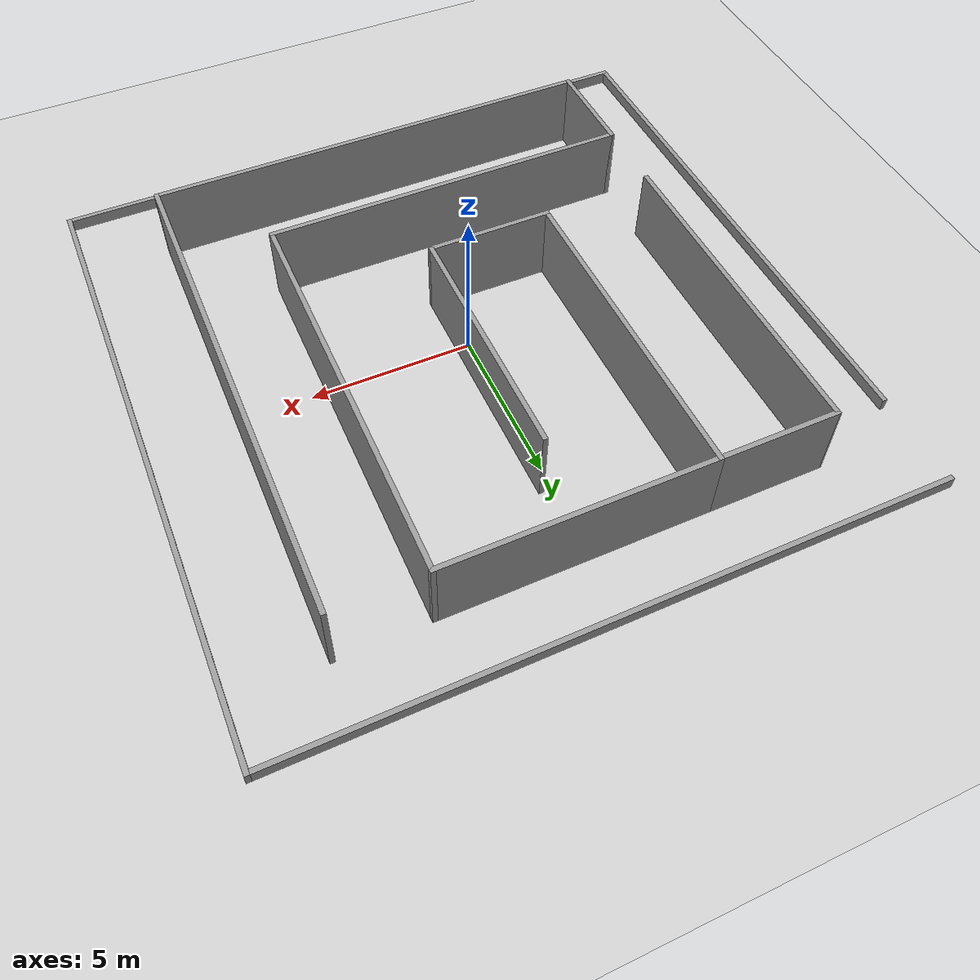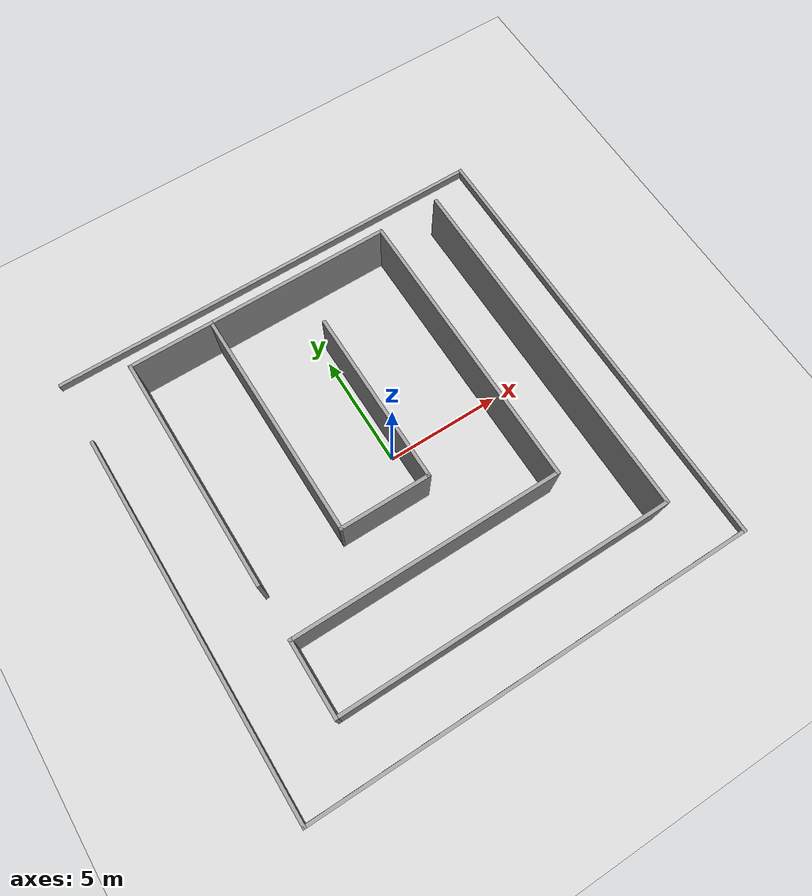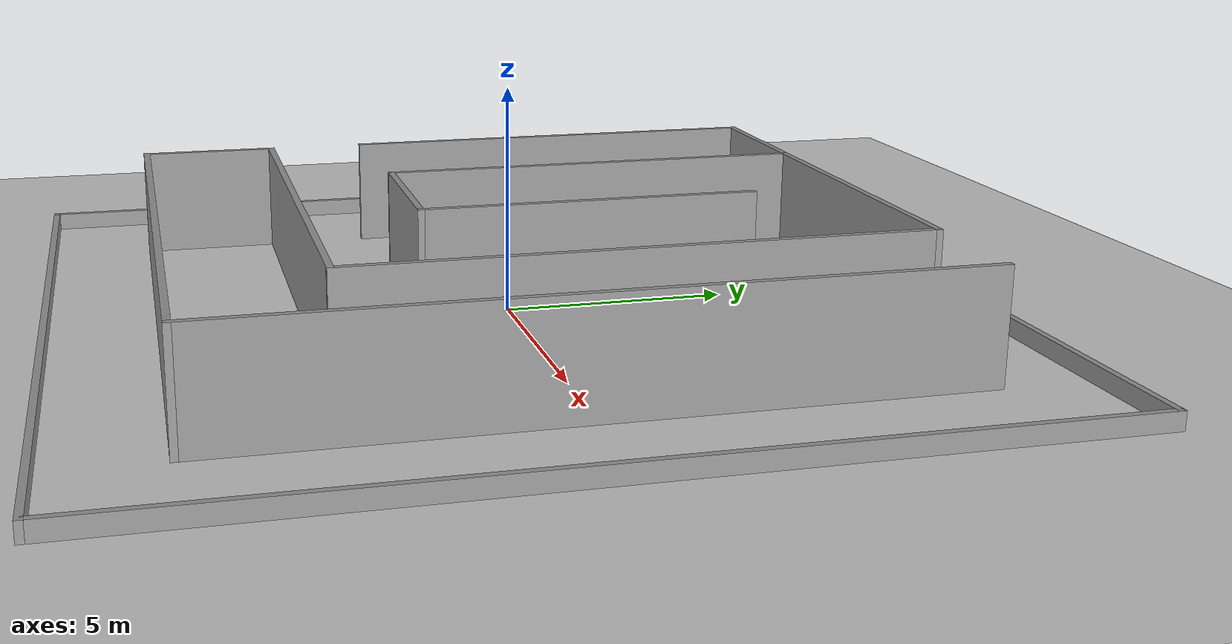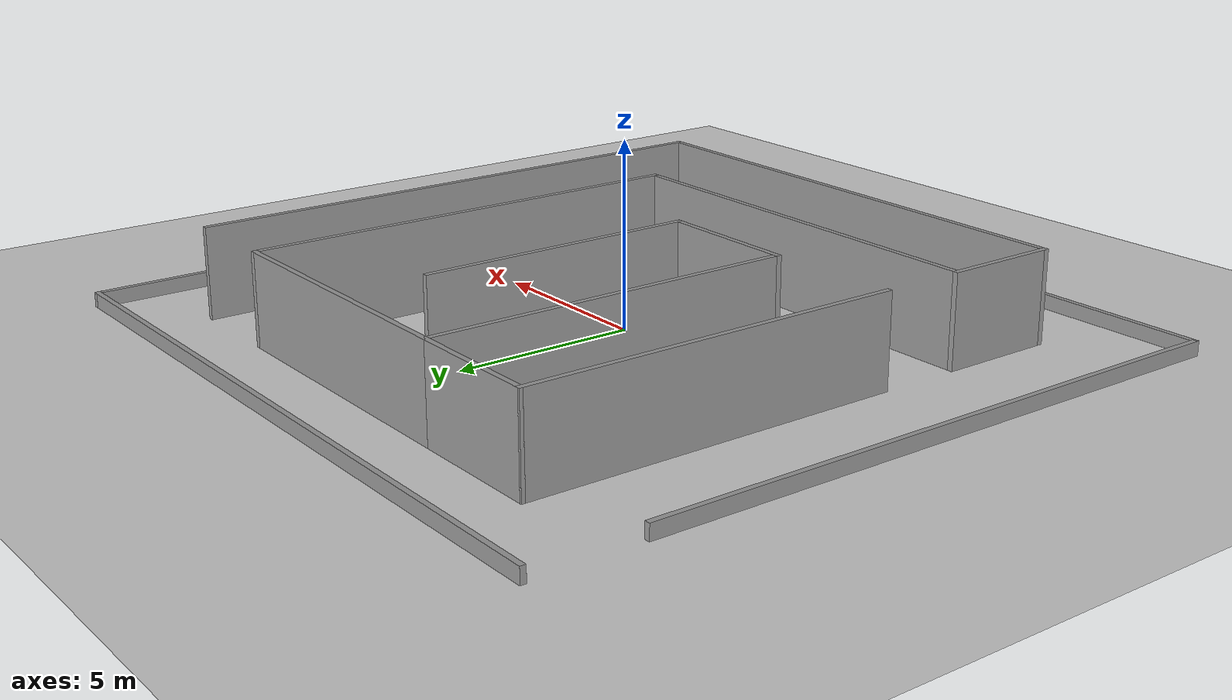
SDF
<sdf version="1.4">
  <world name="default">

    <scene>
      <ambient>0.4 0.4 0.4 1</ambient>
      <background>0.7 0.7 0.7 1</background>
      <shadows>true</shadows>
    </scene>

    <!-- A global light source -->
    <include>
      <uri>model://sun</uri>
    </include>

    <!-- A ground plane -->
    <include>
      <uri>model://ground_plane</uri>
    </include>

    <!-- My Maze -->
    <include>
      <uri>model://my_maze</uri>
    </include>

    <physics type="ode">
      <real_time_update_rate>1000.0</real_time_update_rate>
      <max_step_size>0.001</max_step_size>
      <real_time_factor>1</real_time_factor>
      <ode>
        <solver>
          <type>quick</type>
          <iters>150</iters>
          <precon_iters>0</precon_iters>
          <sor>1.400000</sor>
          <use_dynamic_moi_rescaling>1</use_dynamic_moi_rescaling>
        </solver>
        <constraints>
          <cfm>0.00001</cfm>
          <erp>0.2</erp>
          <contact_max_correcting_vel>2000.000000</contact_max_correcting_vel>
          <contact_surface_layer>0.01000</contact_surface_layer>
        </constraints>
      </ode>
    </physics>
  </world>

</sdf>

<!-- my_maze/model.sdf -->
<sdf version='1.7'>
  <model name='my_maze'>
    <pose>0 0 0 0 -0 0</pose>
    <link name='Wall_49'>
      <collision name='Wall_49_Collision'>
        <geometry>
          <box>
            <size>17.15 0.15 0.4</size>
          </box>
        </geometry>
        <pose>0 0 0.2 0 -0 0</pose>
      </collision>
      <visual name='Wall_49_Visual'>
        <pose>0 0 0.2 0 -0 0</pose>
        <geometry>
          <box>
            <size>17.15 0.15 0.4</size>
          </box>
        </geometry>
        <material>
          <script>
            <uri>file://media/materials/scripts/gazebo.material</uri>
            <name>Gazebo/Grey</name>
          </script>
          <ambient>1 1 1 1</ambient>
        </material>
        <meta>
          <layer>0</layer>
        </meta>
      </visual>
      <pose>-10 -1.5 0 0 -0 -1.5708</pose>
    </link>
    <link name='Wall_51'>
      <collision name='Wall_51_Collision'>
        <geometry>
          <box>
            <size>20.15 0.15 0.4</size>
          </box>
        </geometry>
        <pose>0 0 0.2 0 -0 0</pose>
      </collision>
      <visual name='Wall_51_Visual'>
        <pose>0 0 0.2 0 -0 0</pose>
        <geometry>
          <box>
            <size>20.15 0.15 0.4</size>
          </box>
        </geometry>
        <material>
          <script>
            <uri>file://media/materials/scripts/gazebo.material</uri>
            <name>Gazebo/Grey</name>
          </script>
          <ambient>1 1 1 1</ambient>
        </material>
        <meta>
          <layer>0</layer>
        </meta>
      </visual>
      <pose>0 10 0 0 -0 0</pose>
    </link>
    <link name='Wall_53'>
      <collision name='Wall_53_Collision'>
        <geometry>
          <box>
            <size>20.15 0.15 0.4</size>
          </box>
        </geometry>
        <pose>0 0 0.2 0 -0 0</pose>
      </collision>
      <visual name='Wall_53_Visual'>
        <pose>0 0 0.2 0 -0 0</pose>
        <geometry>
          <box>
            <size>20.15 0.15 0.4</size>
          </box>
        </geometry>
        <material>
          <script>
            <uri>file://media/materials/scripts/gazebo.material</uri>
            <name>Gazebo/Grey</name>
          </script>
          <ambient>1 1 1 1</ambient>
        </material>
        <meta>
          <layer>0</layer>
        </meta>
      </visual>
      <pose>10 0 0 0 -0 -1.5708</pose>
    </link>
    <link name='Wall_55'>
      <collision name='Wall_55_Collision'>
        <geometry>
          <box>
            <size>20.15 0.15 0.4</size>
          </box>
        </geometry>
        <pose>0 0 0.2 0 -0 0</pose>
      </collision>
      <visual name='Wall_55_Visual'>
        <pose>0 0 0.2 0 -0 0</pose>
        <geometry>
          <box>
            <size>20.15 0.15 0.4</size>
          </box>
        </geometry>
        <material>
          <script>
            <uri>file://media/materials/scripts/gazebo.material</uri>
            <name>Gazebo/Grey</name>
          </script>
          <ambient>1 1 1 1</ambient>
        </material>
        <meta>
          <layer>0</layer>
        </meta>
      </visual>
      <pose>0 -10 0 0 -0 3.14159</pose>
    </link>
    <link name='Wall_83'>
      <collision name='Wall_83_Collision'>
        <geometry>
          <box>
            <size>15.75 0.15 2.5</size>
          </box>
        </geometry>
        <pose>0 0 1.25 0 -0 0</pose>
      </collision>
      <visual name='Wall_83_Visual'>
        <pose>0 0 1.25 0 -0 0</pose>
        <geometry>
          <box>
            <size>15.75 0.15 2.5</size>
          </box>
        </geometry>
        <material>
          <script>
            <uri>file://media/materials/scripts/gazebo.material</uri>
            <name>Gazebo/Grey</name>
          </script>
          <ambient>1 1 1 1</ambient>
        </material>
        <meta>
          <layer>0</layer>
        </meta>
      </visual>
      <pose>7.25 0.2 0 0 -0 -1.5708</pose>
    </link>
    <link name='Wall_84'>
      <collision name='Wall_84_Collision'>
        <geometry>
          <box>
            <size>14.5 0.15 2.5</size>
          </box>
        </geometry>
        <pose>0 0 1.25 0 -0 0</pose>
      </collision>
      <visual name='Wall_84_Visual'>
        <pose>0 0 1.25 0 -0 0</pose>
        <geometry>
          <box>
            <size>14.5 0.15 2.5</size>
          </box>
        </geometry>
        <material>
          <script>
            <uri>file://media/materials/scripts/gazebo.material</uri>
            <name>Gazebo/Grey</name>
          </script>
          <ambient>1 1 1 1</ambient>
        </material>
        <meta>
          <layer>0</layer>
        </meta>
      </visual>
      <pose>0.075 -7.6 0 0 -0 3.14159</pose>
    </link>
    <link name='Wall_85'>
      <collision name='Wall_85_Collision'>
        <geometry>
          <box>
            <size>3.25 0.15 2.5</size>
          </box>
        </geometry>
        <pose>0 0 1.25 0 -0 0</pose>
      </collision>
      <visual name='Wall_85_Visual'>
        <pose>0 0 1.25 0 -0 0</pose>
        <geometry>
          <box>
            <size>3.25 0.15 2.5</size>
          </box>
        </geometry>
        <material>
          <script>
            <uri>file://media/materials/scripts/gazebo.material</uri>
            <name>Gazebo/Grey</name>
          </script>
          <ambient>1 1 1 1</ambient>
        </material>
        <meta>
          <layer>0</layer>
        </meta>
      </visual>
      <pose>-7.1 -6.05 0 0 -0 1.5708</pose>
    </link>
    <link name='Wall_86'>
      <collision name='Wall_86_Collision'>
        <geometry>
          <box>
            <size>11.75 0.15 2.5</size>
          </box>
        </geometry>
        <pose>0 0 1.25 0 -0 0</pose>
      </collision>
      <visual name='Wall_86_Visual'>
        <pose>0 0 1.25 0 -0 0</pose>
        <geometry>
          <box>
            <size>11.75 0.15 2.5</size>
          </box>
        </geometry>
        <material>
          <script>
            <uri>file://media/materials/scripts/gazebo.material</uri>
            <name>Gazebo/Grey</name>
          </script>
          <ambient>1 1 1 1</ambient>
        </material>
        <meta>
          <layer>0</layer>
        </meta>
      </visual>
      <pose>-1.3 -4.5 0 0 -0 0</pose>
    </link>
    <link name='Wall_87'>
      <collision name='Wall_87_Collision'>
        <geometry>
          <box>
            <size>12.65 0.15 2.5</size>
          </box>
        </geometry>
        <pose>0 0 1.25 0 -0 0</pose>
      </collision>
      <visual name='Wall_87_Visual'>
        <pose>0 0 1.25 0 -0 0</pose>
        <geometry>
          <box>
            <size>12.65 0.15 2.5</size>
          </box>
        </geometry>
        <material>
          <script>
            <uri>file://media/materials/scripts/gazebo.material</uri>
            <name>Gazebo/Grey</name>
          </script>
          <ambient>1 1 1 1</ambient>
        </material>
        <meta>
          <layer>0</layer>
        </meta>
      </visual>
      <pose>4.5 1.75 0 0 -0 1.5708</pose>
    </link>
    <link name='Wall_88'>
      <collision name='Wall_88_Collision'>
        <geometry>
          <box>
            <size>8.15 0.15 2.5</size>
          </box>
        </geometry>
        <pose>0 0 1.25 0 -0 0</pose>
      </collision>
      <visual name='Wall_88_Visual'>
        <pose>0 0 1.25 0 -0 0</pose>
        <geometry>
          <box>
            <size>8.15 0.15 2.5</size>
          </box>
        </geometry>
        <material>
          <script>
            <uri>file://media/materials/scripts/gazebo.material</uri>
            <name>Gazebo/Grey</name>
          </script>
          <ambient>1 1 1 1</ambient>
        </material>
        <meta>
          <layer>0</layer>
        </meta>
      </visual>
      <pose>0.5 8 0 0 -0 3.14159</pose>
    </link>
    <link name='Wall_89'>
      <collision name='Wall_89_Collision'>
        <geometry>
          <box>
            <size>10.15 0.15 2.5</size>
          </box>
        </geometry>
        <pose>0 0 1.25 0 -0 0</pose>
      </collision>
      <visual name='Wall_89_Visual'>
        <pose>0 0 1.25 0 -0 0</pose>
        <geometry>
          <box>
            <size>10.15 0.15 2.5</size>
          </box>
        </geometry>
        <material>
          <script>
            <uri>file://media/materials/scripts/gazebo.material</uri>
            <name>Gazebo/Grey</name>
          </script>
          <ambient>1 1 1 1</ambient>
        </material>
        <meta>
          <layer>0</layer>
        </meta>
      </visual>
      <pose>-3.5 3 0 0 -0 -1.5708</pose>
    </link>
    <link name='Wall_90'>
      <collision name='Wall_90_Collision'>
        <geometry>
          <box>
            <size>3.98852 0.15 2.5</size>
          </box>
        </geometry>
        <pose>0 0 1.25 0 -0 0</pose>
      </collision>
      <visual name='Wall_90_Visual'>
        <pose>0 0 1.25 0 -0 0</pose>
        <geometry>
          <box>
            <size>3.98852 0.15 2.5</size>
          </box>
        </geometry>
        <material>
          <script>
            <uri>file://media/materials/scripts/gazebo.material</uri>
            <name>Gazebo/Grey</name>
          </script>
          <ambient>1 1 1 1</ambient>
        </material>
        <meta>
          <layer>0</layer>
        </meta>
      </visual>
      <pose>-1.58104 -2.00305 0 0 -0 -0.001591</pose>
    </link>
    <link name='Wall_91'>
      <collision name='Wall_91_Collision'>
        <geometry>
          <box>
            <size>7.75 0.15 2.5</size>
          </box>
        </geometry>
        <pose>0 0 1.25 0 -0 0</pose>
      </collision>
      <visual name='Wall_91_Visual'>
        <pose>0 0 1.25 0 -0 0</pose>
        <geometry>
          <box>
            <size>7.75 0.15 2.5</size>
          </box>
        </geometry>
        <material>
          <script>
            <uri>file://media/materials/scripts/gazebo.material</uri>
            <name>Gazebo/Grey</name>
          </script>
          <ambient>1 1 1 1</ambient>
        </material>
        <meta>
          <layer>0</layer>
        </meta>
      </visual>
      <pose>0.337913 1.80572 0 0 -0 1.5708</pose>
    </link>
    <link name='Wall_93'>
      <collision name='Wall_93_Collision'>
        <geometry>
          <box>
            <size>3.75 0.15 2.5</size>
          </box>
        </geometry>
        <pose>0 0 1.25 0 -0 0</pose>
      </collision>
      <visual name='Wall_93_Visual'>
        <pose>0 0 1.25 0 -0 0</pose>
        <geometry>
          <box>
            <size>3.75 0.15 2.5</size>
          </box>
        </geometry>
        <material>
          <script>
            <uri>file://media/materials/scripts/gazebo.material</uri>
            <name>Gazebo/Grey</name>
          </script>
          <ambient>1 1 1 1</ambient>
        </material>
        <meta>
          <layer>0</layer>
        </meta>
      </visual>
      <pose>-5.3 8 0 0 -0 3.14159</pose>
    </link>
    <link name='Wall_94'>
      <collision name='Wall_94_Collision'>
        <geometry>
          <box>
            <size>10.323 0.15 2.5</size>
          </box>
        </geometry>
        <pose>0 0 1.25 0 -0 0</pose>
      </collision>
      <visual name='Wall_94_Visual'>
        <pose>0 0 1.25 0 -0 0</pose>
        <geometry>
          <box>
            <size>10.323 0.15 2.5</size>
          </box>
        </geometry>
        <material>
          <script>
            <uri>file://media/materials/scripts/gazebo.material</uri>
            <name>Gazebo/Grey</name>
          </script>
          <ambient>1 1 1 1</ambient>
        </material>
        <meta>
          <layer>0</layer>
        </meta>
      </visual>
      <pose>-7.10098 2.9135 0 0 -0 -1.57099</pose>
    </link>
    <static>1</static>
  </model>
</sdf>
